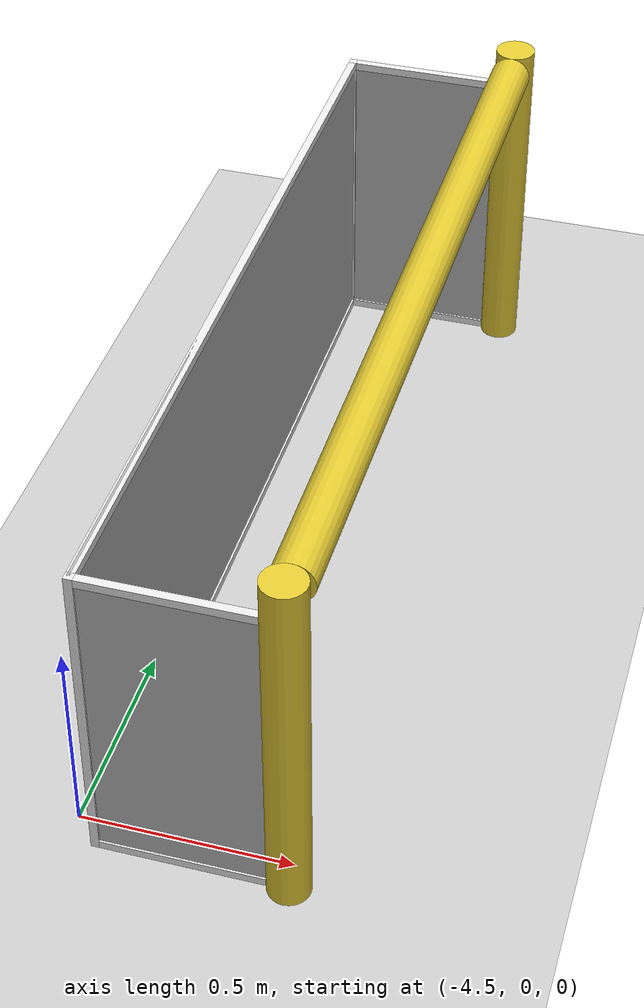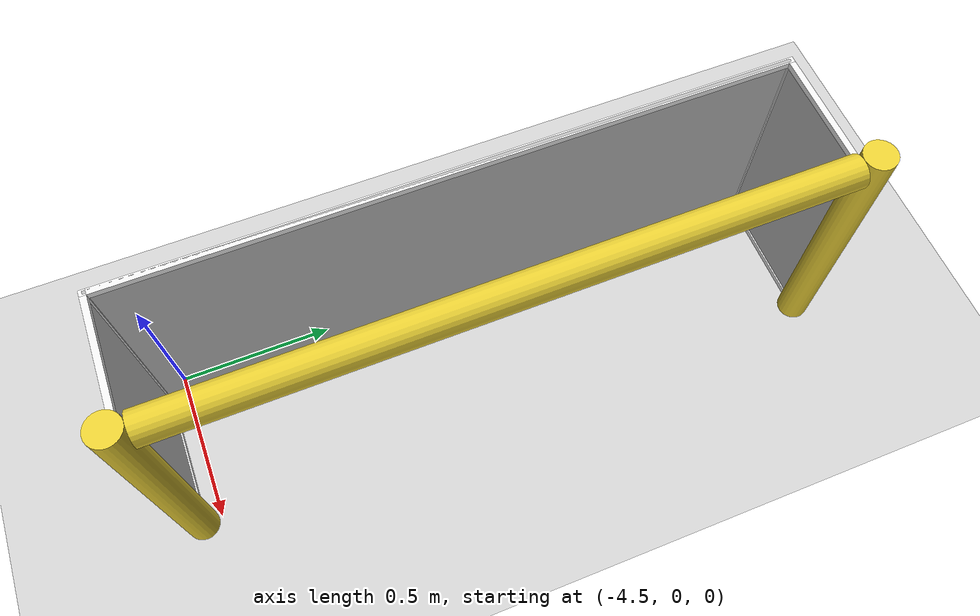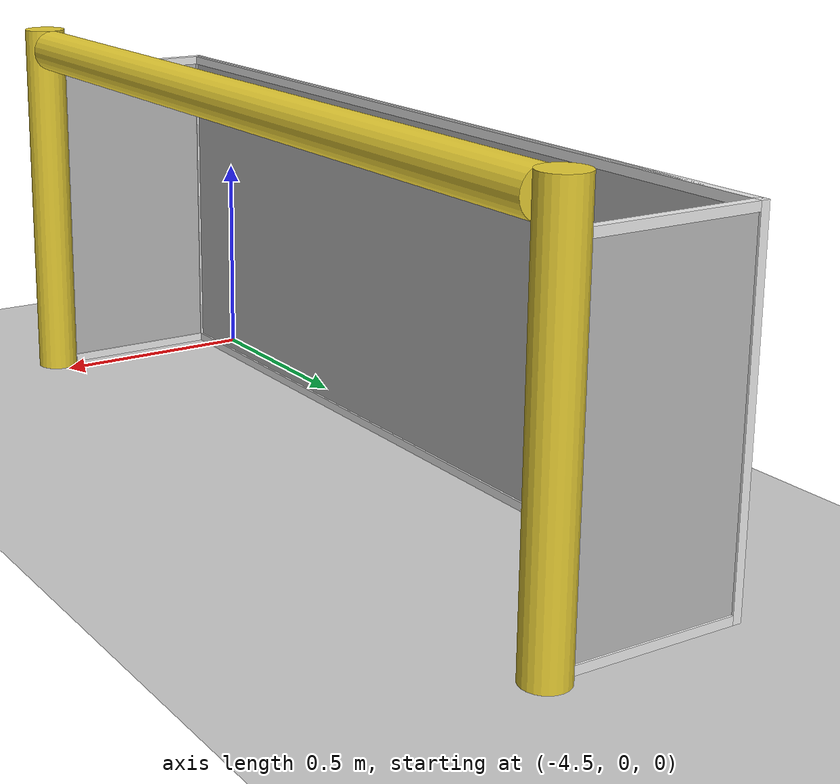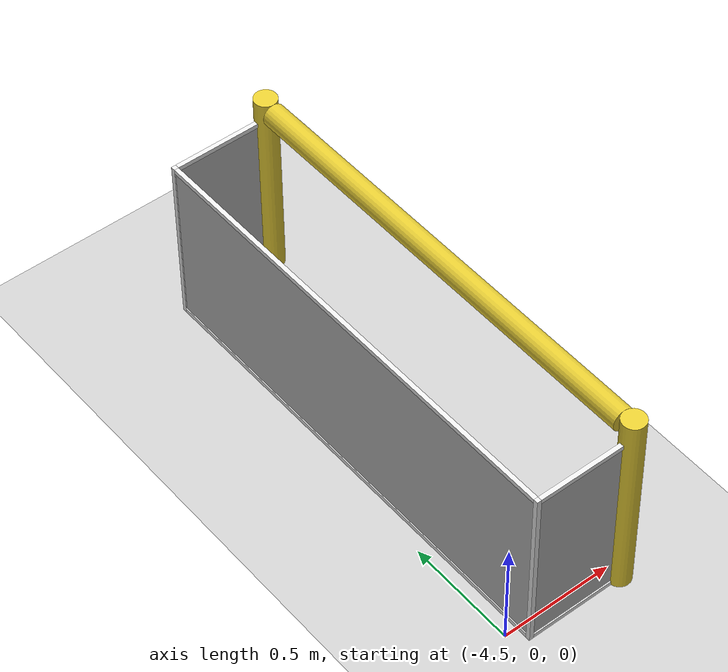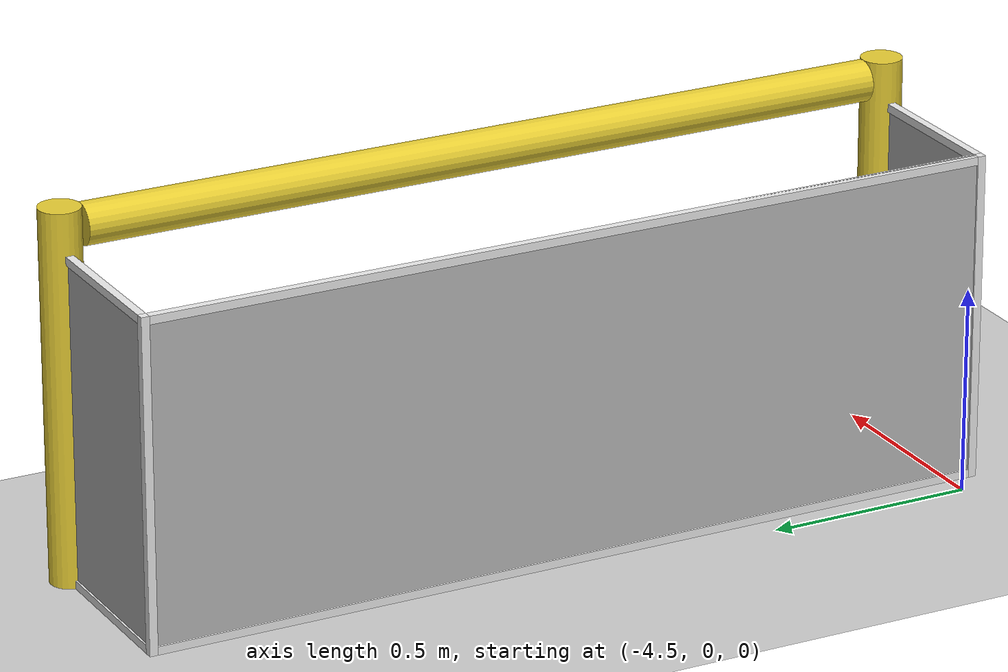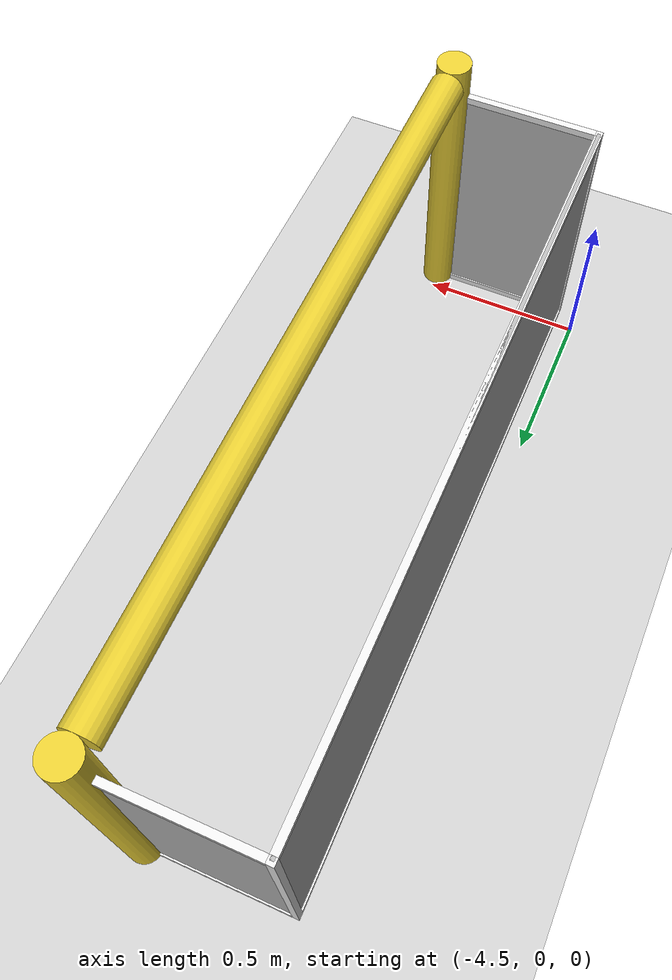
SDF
<sdf version="1.4">
 <world name="default">
  <model name="ground_plane">
   <static>1</static>
   <link name="link">
    <collision name="collision">
     <geometry><plane><normal>0 0 1</normal><size>100 100</size></plane></geometry>
     <surface><friction><ode><mu>100</mu><mu2>50</mu2></ode></friction></surface>
    </collision>
    <visual name="visual">
     <cast_shadows>0</cast_shadows>
     <geometry><plane><normal>0 0 1</normal><size>100 100</size></plane></geometry>
     <material>
      <script><uri>file://media/materials/scripts/gazebo.material</uri><name>Gazebo/Grey</name></script>
     </material>
    </visual>
    <velocity_decay><linear>0</linear><angular>0</angular></velocity_decay>
   </link>
  </model>
  <model name="RoboCup_3D_Simulator_Goal_2">
   <pose>-3.99646 0.99 0 0 0 -3.14</pose>
   <link name="left_post">
    <pose>-0 1.05 0.45 0 -0 0</pose>
    <velocity_decay><linear>0</linear><angular>0</angular></velocity_decay>
    <visual name="visual">
     <geometry><cylinder><radius>0.05</radius><length>0.9</length></cylinder></geometry>
     <material>
      <script><uri>file://media/materials/scripts/gazebo.material</uri><name>Gazebo/ZincYellow</name></script>
      <shader type="pixel"/>
     </material>
    </visual>
    <collision name="collision">
     <geometry><cylinder><radius>0.05</radius><length>0.9</length></cylinder></geometry>
     <surface>
      <friction>
       <ode><mu>1</mu><mu2>1</mu2><fdir1>0 0 0</fdir1><slip1>0</slip1><slip2>0</slip2></ode>
       <torsional>
        <coefficient>1</coefficient>
        <patch_radius>0</patch_radius>
        <surface_radius>0</surface_radius>
        <use_patch_radius>1</use_patch_radius>
        <ode><slip>0</slip></ode>
       </torsional>
      </friction>
      <bounce><restitution_coefficient>0</restitution_coefficient><threshold>1e+06</threshold></bounce>
      <contact>
       <collide_without_contact>0</collide_without_contact>
       <collide_without_contact_bitmask>1</collide_without_contact_bitmask>
       <collide_bitmask>1</collide_bitmask>
       <ode>
        <soft_cfm>0</soft_cfm>
        <soft_erp>0.2</soft_erp>
        <kp>1e+13</kp>
        <kd>1</kd>
        <max_vel>0.01</max_vel>
        <min_depth>0</min_depth>
       </ode>
       <bullet>
        <split_impulse>1</split_impulse>
        <split_impulse_penetration_threshold>-0.01</split_impulse_penetration_threshold>
        <soft_cfm>0</soft_cfm>
        <soft_erp>0.2</soft_erp>
        <kp>1e+13</kp>
        <kd>1</kd>
       </bullet>
      </contact>
     </surface>
    </collision>
   </link>
   <link name="center_net">
    <pose>0.44 0 0.4 0 -0 0</pose>
    <velocity_decay><linear>0</linear><angular>0</angular></velocity_decay>
    <visual name="visual">
     <geometry><box><size>0.01 2.1 0.8</size></box></geometry>
     <material>
      <script>
       <uri>model://robocup09_spl_field/materials/scripts/</uri>
       <uri>model://robocup09_spl_field/materials/textures/</uri>
       <name>RoboCup/Net</name>
      </script>
      <shader type="pixel"/>
     </material>
    </visual>
    <collision name="collision">
     <geometry><box><size>0.01 2.1 0.8</size></box></geometry>
     <surface>
      <friction>
       <ode><mu>1</mu><mu2>1</mu2><fdir1>0 0 0</fdir1><slip1>0</slip1><slip2>0</slip2></ode>
       <torsional>
        <coefficient>1</coefficient>
        <patch_radius>0</patch_radius>
        <surface_radius>0</surface_radius>
        <use_patch_radius>1</use_patch_radius>
        <ode><slip>0</slip></ode>
       </torsional>
      </friction>
      <bounce><restitution_coefficient>0</restitution_coefficient><threshold>1e+06</threshold></bounce>
      <contact>
       <collide_without_contact>0</collide_without_contact>
       <collide_without_contact_bitmask>1</collide_without_contact_bitmask>
       <collide_bitmask>1</collide_bitmask>
       <ode>
        <soft_cfm>0</soft_cfm>
        <soft_erp>0.2</soft_erp>
        <kp>1e+13</kp>
        <kd>1</kd>
        <max_vel>0.01</max_vel>
        <min_depth>0</min_depth>
       </ode>
       <bullet>
        <split_impulse>1</split_impulse>
        <split_impulse_penetration_threshold>-0.01</split_impulse_penetration_threshold>
        <soft_cfm>0</soft_cfm>
        <soft_erp>0.2</soft_erp>
        <kp>1e+13</kp>
        <kd>1</kd>
       </bullet>
      </contact>
     </surface>
    </collision>
   </link>
   <link name="center_support_horiz_lower">
    <pose>0.44 0 0.01 -3.14159 1.57079 -3.14159</pose>
    <velocity_decay><linear>0</linear><angular>0</angular></velocity_decay>
    <visual name="visual">
     <geometry><box><size>0.02 2.08 0.02</size></box></geometry>
     <material>
      <script><uri>file://media/materials/scripts/gazebo.material</uri><name>Gazebo/White</name></script>
      <shader type="pixel"/>
     </material>
    </visual>
    <collision name="collision">
     <geometry><box><size>0.02 2.08 0.02</size></box></geometry>
     <surface>
      <friction>
       <ode><mu>1</mu><mu2>1</mu2><fdir1>0 0 0</fdir1><slip1>0</slip1><slip2>0</slip2></ode>
       <torsional>
        <coefficient>1</coefficient>
        <patch_radius>0</patch_radius>
        <surface_radius>0</surface_radius>
        <use_patch_radius>1</use_patch_radius>
        <ode><slip>0</slip></ode>
       </torsional>
      </friction>
      <bounce><restitution_coefficient>0</restitution_coefficient><threshold>1e+06</threshold></bounce>
      <contact>
       <collide_without_contact>0</collide_without_contact>
       <collide_without_contact_bitmask>1</collide_without_contact_bitmask>
       <collide_bitmask>1</collide_bitmask>
       <ode>
        <soft_cfm>0</soft_cfm>
        <soft_erp>0.2</soft_erp>
        <kp>1e+13</kp>
        <kd>1</kd>
        <max_vel>0.01</max_vel>
        <min_depth>0</min_depth>
       </ode>
       <bullet>
        <split_impulse>1</split_impulse>
        <split_impulse_penetration_threshold>-0.01</split_impulse_penetration_threshold>
        <soft_cfm>0</soft_cfm>
        <soft_erp>0.2</soft_erp>
        <kp>1e+13</kp>
        <kd>1</kd>
       </bullet>
      </contact>
     </surface>
    </collision>
   </link>
   <link name="center_support_horiz_upper">
    <pose>0.44 0 0.79 -3.14159 1.57079 -3.14159</pose>
    <velocity_decay><linear>0</linear><angular>0</angular></velocity_decay>
    <visual name="visual">
     <geometry><box><size>0.02 2.08 0.02</size></box></geometry>
     <material>
      <script><uri>file://media/materials/scripts/gazebo.material</uri><name>Gazebo/White</name></script>
      <shader type="pixel"/>
     </material>
    </visual>
    <collision name="collision">
     <geometry><box><size>0.02 2.08 0.02</size></box></geometry>
     <surface>
      <friction>
       <ode><mu>1</mu><mu2>1</mu2><fdir1>0 0 0</fdir1><slip1>0</slip1><slip2>0</slip2></ode>
       <torsional>
        <coefficient>1</coefficient>
        <patch_radius>0</patch_radius>
        <surface_radius>0</surface_radius>
        <use_patch_radius>1</use_patch_radius>
        <ode><slip>0</slip></ode>
       </torsional>
      </friction>
      <bounce><restitution_coefficient>0</restitution_coefficient><threshold>1e+06</threshold></bounce>
      <contact>
       <collide_without_contact>0</collide_without_contact>
       <collide_without_contact_bitmask>1</collide_without_contact_bitmask>
       <collide_bitmask>1</collide_bitmask>
       <ode>
        <soft_cfm>0</soft_cfm>
        <soft_erp>0.2</soft_erp>
        <kp>1e+13</kp>
        <kd>1</kd>
        <max_vel>0.01</max_vel>
        <min_depth>0</min_depth>
       </ode>
       <bullet>
        <split_impulse>1</split_impulse>
        <split_impulse_penetration_threshold>-0.01</split_impulse_penetration_threshold>
        <soft_cfm>0</soft_cfm>
        <soft_erp>0.2</soft_erp>
        <kp>1e+13</kp>
        <kd>1</kd>
       </bullet>
      </contact>
     </surface>
    </collision>
   </link>
   <link name="crossbar">
    <pose>0 0 0.85 1.57004 1.57 3.6e-05</pose>
    <velocity_decay><linear>0</linear><angular>0</angular></velocity_decay>
    <visual name="visual">
     <geometry><cylinder><radius>0.05</radius><length>2</length></cylinder></geometry>
     <material>
      <script><uri>file://media/materials/scripts/gazebo.material</uri><name>Gazebo/ZincYellow</name></script>
      <shader type="pixel"/>
     </material>
    </visual>
    <collision name="collision">
     <geometry><cylinder><radius>0.05</radius><length>2</length></cylinder></geometry>
     <surface>
      <friction>
       <ode><mu>1</mu><mu2>1</mu2><fdir1>0 0 0</fdir1><slip1>0</slip1><slip2>0</slip2></ode>
       <torsional>
        <coefficient>1</coefficient>
        <patch_radius>0</patch_radius>
        <surface_radius>0</surface_radius>
        <use_patch_radius>1</use_patch_radius>
        <ode><slip>0</slip></ode>
       </torsional>
      </friction>
      <bounce><restitution_coefficient>0</restitution_coefficient><threshold>1e+06</threshold></bounce>
      <contact>
       <collide_without_contact>0</collide_without_contact>
       <collide_without_contact_bitmask>1</collide_without_contact_bitmask>
       <collide_bitmask>1</collide_bitmask>
       <ode>
        <soft_cfm>0</soft_cfm>
        <soft_erp>0.2</soft_erp>
        <kp>1e+13</kp>
        <kd>1</kd>
        <max_vel>0.01</max_vel>
        <min_depth>0</min_depth>
       </ode>
       <bullet>
        <split_impulse>1</split_impulse>
        <split_impulse_penetration_threshold>-0.01</split_impulse_penetration_threshold>
        <soft_cfm>0</soft_cfm>
        <soft_erp>0.2</soft_erp>
        <kp>1e+13</kp>
        <kd>1</kd>
       </bullet>
      </contact>
     </surface>
    </collision>
   </link>
   <link name="left_net">
    <pose>0.24 1.05 0.4 0 -0 0</pose>
    <velocity_decay><linear>0</linear><angular>0</angular></velocity_decay>
    <visual name="visual">
     <geometry><box><size>0.38 0.01 0.76</size></box></geometry>
     <material>
      <script>
       <uri>model://robocup09_spl_field/materials/scripts/</uri>
       <uri>model://robocup09_spl_field/materials/textures/</uri>
       <name>RoboCup/Net</name>
      </script>
      <shader type="pixel"/>
     </material>
    </visual>
    <collision name="collision">
     <geometry><box><size>0.38 0.01 0.76</size></box></geometry>
     <surface>
      <friction>
       <ode><mu>1</mu><mu2>1</mu2><fdir1>0 0 0</fdir1><slip1>0</slip1><slip2>0</slip2></ode>
       <torsional>
        <coefficient>1</coefficient>
        <patch_radius>0</patch_radius>
        <surface_radius>0</surface_radius>
        <use_patch_radius>1</use_patch_radius>
        <ode><slip>0</slip></ode>
       </torsional>
      </friction>
      <bounce><restitution_coefficient>0</restitution_coefficient><threshold>1e+06</threshold></bounce>
      <contact>
       <collide_without_contact>0</collide_without_contact>
       <collide_without_contact_bitmask>1</collide_without_contact_bitmask>
       <collide_bitmask>1</collide_bitmask>
       <ode>
        <soft_cfm>0</soft_cfm>
        <soft_erp>0.2</soft_erp>
        <kp>1e+13</kp>
        <kd>1</kd>
        <max_vel>0.01</max_vel>
        <min_depth>0</min_depth>
       </ode>
       <bullet>
        <split_impulse>1</split_impulse>
        <split_impulse_penetration_threshold>-0.01</split_impulse_penetration_threshold>
        <soft_cfm>0</soft_cfm>
        <soft_erp>0.2</soft_erp>
        <kp>1e+13</kp>
        <kd>1</kd>
       </bullet>
      </contact>
     </surface>
    </collision>
   </link>
   <link name="left_support_horiz_lower">
    <pose>0.24 1.05 0.01 0 -0 0</pose>
    <velocity_decay><linear>0</linear><angular>0</angular></velocity_decay>
    <visual name="visual">
     <geometry><box><size>0.38 0.02 0.02</size></box></geometry>
     <material>
      <script><uri>file://media/materials/scripts/gazebo.material</uri><name>Gazebo/White</name></script>
      <shader type="pixel"/>
     </material>
    </visual>
    <collision name="collision">
     <geometry><box><size>0.38 0.02 0.02</size></box></geometry>
     <surface>
      <friction>
       <ode><mu>1</mu><mu2>1</mu2><fdir1>0 0 0</fdir1><slip1>0</slip1><slip2>0</slip2></ode>
       <torsional>
        <coefficient>1</coefficient>
        <patch_radius>0</patch_radius>
        <surface_radius>0</surface_radius>
        <use_patch_radius>1</use_patch_radius>
        <ode><slip>0</slip></ode>
       </torsional>
      </friction>
      <bounce><restitution_coefficient>0</restitution_coefficient><threshold>1e+06</threshold></bounce>
      <contact>
       <collide_without_contact>0</collide_without_contact>
       <collide_without_contact_bitmask>1</collide_without_contact_bitmask>
       <collide_bitmask>1</collide_bitmask>
       <ode>
        <soft_cfm>0</soft_cfm>
        <soft_erp>0.2</soft_erp>
        <kp>1e+13</kp>
        <kd>1</kd>
        <max_vel>0.01</max_vel>
        <min_depth>0</min_depth>
       </ode>
       <bullet>
        <split_impulse>1</split_impulse>
        <split_impulse_penetration_threshold>-0.01</split_impulse_penetration_threshold>
        <soft_cfm>0</soft_cfm>
        <soft_erp>0.2</soft_erp>
        <kp>1e+13</kp>
        <kd>1</kd>
       </bullet>
      </contact>
     </surface>
    </collision>
   </link>
   <link name="left_support_horiz_upper">
    <pose>0.24 1.05 0.79 0 -0 0</pose>
    <velocity_decay><linear>0</linear><angular>0</angular></velocity_decay>
    <visual name="visual">
     <geometry><box><size>0.38 0.02 0.02</size></box></geometry>
     <material>
      <script><uri>file://media/materials/scripts/gazebo.material</uri><name>Gazebo/White</name></script>
      <shader type="pixel"/>
     </material>
    </visual>
    <collision name="collision">
     <geometry><box><size>0.38 0.02 0.02</size></box></geometry>
     <surface>
      <friction>
       <ode><mu>1</mu><mu2>1</mu2><fdir1>0 0 0</fdir1><slip1>0</slip1><slip2>0</slip2></ode>
       <torsional>
        <coefficient>1</coefficient>
        <patch_radius>0</patch_radius>
        <surface_radius>0</surface_radius>
        <use_patch_radius>1</use_patch_radius>
        <ode><slip>0</slip></ode>
       </torsional>
      </friction>
      <bounce><restitution_coefficient>0</restitution_coefficient><threshold>1e+06</threshold></bounce>
      <contact>
       <collide_without_contact>0</collide_without_contact>
       <collide_without_contact_bitmask>1</collide_without_contact_bitmask>
       <collide_bitmask>1</collide_bitmask>
       <ode>
        <soft_cfm>0</soft_cfm>
        <soft_erp>0.2</soft_erp>
        <kp>1e+13</kp>
        <kd>1</kd>
        <max_vel>0.01</max_vel>
        <min_depth>0</min_depth>
       </ode>
       <bullet>
        <split_impulse>1</split_impulse>
        <split_impulse_penetration_threshold>-0.01</split_impulse_penetration_threshold>
        <soft_cfm>0</soft_cfm>
        <soft_erp>0.2</soft_erp>
        <kp>1e+13</kp>
        <kd>1</kd>
       </bullet>
      </contact>
     </surface>
    </collision>
   </link>
   <link name="left_support_vertical">
    <pose>0.44 1.05 0.4 -3.14159 1.57079 -3.14159</pose>
    <velocity_decay><linear>0</linear><angular>0</angular></velocity_decay>
    <visual name="visual">
     <geometry><box><size>0.8 0.02 0.02</size></box></geometry>
     <material>
      <script><uri>file://media/materials/scripts/gazebo.material</uri><name>Gazebo/White</name></script>
      <shader type="pixel"/>
     </material>
    </visual>
    <collision name="collision">
     <geometry><box><size>0.8 0.02 0.02</size></box></geometry>
     <surface>
      <friction>
       <ode><mu>1</mu><mu2>1</mu2><fdir1>0 0 0</fdir1><slip1>0</slip1><slip2>0</slip2></ode>
       <torsional>
        <coefficient>1</coefficient>
        <patch_radius>0</patch_radius>
        <surface_radius>0</surface_radius>
        <use_patch_radius>1</use_patch_radius>
        <ode><slip>0</slip></ode>
       </torsional>
      </friction>
      <bounce><restitution_coefficient>0</restitution_coefficient><threshold>1e+06</threshold></bounce>
      <contact>
       <collide_without_contact>0</collide_without_contact>
       <collide_without_contact_bitmask>1</collide_without_contact_bitmask>
       <collide_bitmask>1</collide_bitmask>
       <ode>
        <soft_cfm>0</soft_cfm>
        <soft_erp>0.2</soft_erp>
        <kp>1e+13</kp>
        <kd>1</kd>
        <max_vel>0.01</max_vel>
        <min_depth>0</min_depth>
       </ode>
       <bullet>
        <split_impulse>1</split_impulse>
        <split_impulse_penetration_threshold>-0.01</split_impulse_penetration_threshold>
        <soft_cfm>0</soft_cfm>
        <soft_erp>0.2</soft_erp>
        <kp>1e+13</kp>
        <kd>1</kd>
       </bullet>
      </contact>
     </surface>
    </collision>
   </link>
   <link name="right_net">
    <pose>0.24 -1.05 0.4 0 -0 0</pose>
    <velocity_decay><linear>0</linear><angular>0</angular></velocity_decay>
    <visual name="visual">
     <geometry><box><size>0.38 0.01 0.76</size></box></geometry>
     <material>
      <script>
       <uri>model://robocup09_spl_field/materials/scripts/</uri>
       <uri>model://robocup09_spl_field/materials/textures/</uri>
       <name>RoboCup/Net</name>
      </script>
      <shader type="pixel"/>
     </material>
    </visual>
    <collision name="collision">
     <geometry><box><size>0.38 0.01 0.76</size></box></geometry>
     <surface>
      <friction>
       <ode><mu>1</mu><mu2>1</mu2><fdir1>0 0 0</fdir1><slip1>0</slip1><slip2>0</slip2></ode>
       <torsional>
        <coefficient>1</coefficient>
        <patch_radius>0</patch_radius>
        <surface_radius>0</surface_radius>
        <use_patch_radius>1</use_patch_radius>
        <ode><slip>0</slip></ode>
       </torsional>
      </friction>
      <bounce><restitution_coefficient>0</restitution_coefficient><threshold>1e+06</threshold></bounce>
      <contact>
       <collide_without_contact>0</collide_without_contact>
       <collide_without_contact_bitmask>1</collide_without_contact_bitmask>
       <collide_bitmask>1</collide_bitmask>
       <ode>
        <soft_cfm>0</soft_cfm>
        <soft_erp>0.2</soft_erp>
        <kp>1e+13</kp>
        <kd>1</kd>
        <max_vel>0.01</max_vel>
        <min_depth>0</min_depth>
       </ode>
       <bullet>
        <split_impulse>1</split_impulse>
        <split_impulse_penetration_threshold>-0.01</split_impulse_penetration_threshold>
        <soft_cfm>0</soft_cfm>
        <soft_erp>0.2</soft_erp>
        <kp>1e+13</kp>
        <kd>1</kd>
       </bullet>
      </contact>
     </surface>
    </collision>
   </link>
   <link name="right_post">
    <pose>0 -1.05 0.45 0 -0 0</pose>
    <velocity_decay><linear>0</linear><angular>0</angular></velocity_decay>
    <visual name="visual">
     <geometry><cylinder><radius>0.05</radius><length>0.9</length></cylinder></geometry>
     <material>
      <script><uri>file://media/materials/scripts/gazebo.material</uri><name>Gazebo/ZincYellow</name></script>
      <shader type="pixel"/>
     </material>
    </visual>
    <collision name="collision">
     <geometry><cylinder><radius>0.05</radius><length>0.9</length></cylinder></geometry>
     <surface>
      <friction>
       <ode><mu>1</mu><mu2>1</mu2><fdir1>0 0 0</fdir1><slip1>0</slip1><slip2>0</slip2></ode>
       <torsional>
        <coefficient>1</coefficient>
        <patch_radius>0</patch_radius>
        <surface_radius>0</surface_radius>
        <use_patch_radius>1</use_patch_radius>
        <ode><slip>0</slip></ode>
       </torsional>
      </friction>
      <bounce><restitution_coefficient>0</restitution_coefficient><threshold>1e+06</threshold></bounce>
      <contact>
       <collide_without_contact>0</collide_without_contact>
       <collide_without_contact_bitmask>1</collide_without_contact_bitmask>
       <collide_bitmask>1</collide_bitmask>
       <ode>
        <soft_cfm>0</soft_cfm>
        <soft_erp>0.2</soft_erp>
        <kp>1e+13</kp>
        <kd>1</kd>
        <max_vel>0.01</max_vel>
        <min_depth>0</min_depth>
       </ode>
       <bullet>
        <split_impulse>1</split_impulse>
        <split_impulse_penetration_threshold>-0.01</split_impulse_penetration_threshold>
        <soft_cfm>0</soft_cfm>
        <soft_erp>0.2</soft_erp>
        <kp>1e+13</kp>
        <kd>1</kd>
       </bullet>
      </contact>
     </surface>
    </collision>
   </link>
   <link name="right_support_horiz_lower">
    <pose>0.24 -1.05 0.01 0 -0 0</pose>
    <velocity_decay><linear>0</linear><angular>0</angular></velocity_decay>
    <visual name="visual">
     <geometry><box><size>0.38 0.02 0.02</size></box></geometry>
     <material>
      <script><uri>file://media/materials/scripts/gazebo.material</uri><name>Gazebo/White</name></script>
      <shader type="pixel"/>
     </material>
    </visual>
    <collision name="collision">
     <geometry><box><size>0.38 0.02 0.02</size></box></geometry>
     <surface>
      <friction>
       <ode><mu>1</mu><mu2>1</mu2><fdir1>0 0 0</fdir1><slip1>0</slip1><slip2>0</slip2></ode>
       <torsional>
        <coefficient>1</coefficient>
        <patch_radius>0</patch_radius>
        <surface_radius>0</surface_radius>
        <use_patch_radius>1</use_patch_radius>
        <ode><slip>0</slip></ode>
       </torsional>
      </friction>
      <bounce><restitution_coefficient>0</restitution_coefficient><threshold>1e+06</threshold></bounce>
      <contact>
       <collide_without_contact>0</collide_without_contact>
       <collide_without_contact_bitmask>1</collide_without_contact_bitmask>
       <collide_bitmask>1</collide_bitmask>
       <ode>
        <soft_cfm>0</soft_cfm>
        <soft_erp>0.2</soft_erp>
        <kp>1e+13</kp>
        <kd>1</kd>
        <max_vel>0.01</max_vel>
        <min_depth>0</min_depth>
       </ode>
       <bullet>
        <split_impulse>1</split_impulse>
        <split_impulse_penetration_threshold>-0.01</split_impulse_penetration_threshold>
        <soft_cfm>0</soft_cfm>
        <soft_erp>0.2</soft_erp>
        <kp>1e+13</kp>
        <kd>1</kd>
       </bullet>
      </contact>
     </surface>
    </collision>
   </link>
   <link name="right_support_horiz_upper">
    <pose>0.24 -1.05 0.79 0 -0 0</pose>
    <velocity_decay><linear>0</linear><angular>0</angular></velocity_decay>
    <visual name="visual">
     <geometry><box><size>0.38 0.02 0.02</size></box></geometry>
     <material>
      <script><uri>file://media/materials/scripts/gazebo.material</uri><name>Gazebo/White</name></script>
      <shader type="pixel"/>
     </material>
    </visual>
    <collision name="collision">
     <geometry><box><size>0.38 0.02 0.02</size></box></geometry>
     <surface>
      <friction>
       <ode><mu>1</mu><mu2>1</mu2><fdir1>0 0 0</fdir1><slip1>0</slip1><slip2>0</slip2></ode>
       <torsional>
        <coefficient>1</coefficient>
        <patch_radius>0</patch_radius>
        <surface_radius>0</surface_radius>
        <use_patch_radius>1</use_patch_radius>
        <ode><slip>0</slip></ode>
       </torsional>
      </friction>
      <bounce><restitution_coefficient>0</restitution_coefficient><threshold>1e+06</threshold></bounce>
      <contact>
       <collide_without_contact>0</collide_without_contact>
       <collide_without_contact_bitmask>1</collide_without_contact_bitmask>
       <collide_bitmask>1</collide_bitmask>
       <ode>
        <soft_cfm>0</soft_cfm>
        <soft_erp>0.2</soft_erp>
        <kp>1e+13</kp>
        <kd>1</kd>
        <max_vel>0.01</max_vel>
        <min_depth>0</min_depth>
       </ode>
       <bullet>
        <split_impulse>1</split_impulse>
        <split_impulse_penetration_threshold>-0.01</split_impulse_penetration_threshold>
        <soft_cfm>0</soft_cfm>
        <soft_erp>0.2</soft_erp>
        <kp>1e+13</kp>
        <kd>1</kd>
       </bullet>
      </contact>
     </surface>
    </collision>
   </link>
   <link name="right_support_vertical">
    <pose>0.44 -1.05 0.4 -3.14159 1.57079 -3.14159</pose>
    <velocity_decay><linear>0</linear><angular>0</angular></velocity_decay>
    <visual name="visual">
     <geometry><box><size>0.8 0.02 0.02</size></box></geometry>
     <material>
      <script><uri>file://media/materials/scripts/gazebo.material</uri><name>Gazebo/White</name></script>
      <shader type="pixel"/>
     </material>
    </visual>
    <collision name="collision">
     <geometry><box><size>0.8 0.02 0.02</size></box></geometry>
     <surface>
      <friction>
       <ode><mu>1</mu><mu2>1</mu2><fdir1>0 0 0</fdir1><slip1>0</slip1><slip2>0</slip2></ode>
       <torsional>
        <coefficient>1</coefficient>
        <patch_radius>0</patch_radius>
        <surface_radius>0</surface_radius>
        <use_patch_radius>1</use_patch_radius>
        <ode><slip>0</slip></ode>
       </torsional>
      </friction>
      <bounce><restitution_coefficient>0</restitution_coefficient><threshold>1e+06</threshold></bounce>
      <contact>
       <collide_without_contact>0</collide_without_contact>
       <collide_without_contact_bitmask>1</collide_without_contact_bitmask>
       <collide_bitmask>1</collide_bitmask>
       <ode>
        <soft_cfm>0</soft_cfm>
        <soft_erp>0.2</soft_erp>
        <kp>1e+13</kp>
        <kd>1</kd>
        <max_vel>0.01</max_vel>
        <min_depth>0</min_depth>
       </ode>
       <bullet>
        <split_impulse>1</split_impulse>
        <split_impulse_penetration_threshold>-0.01</split_impulse_penetration_threshold>
        <soft_cfm>0</soft_cfm>
        <soft_erp>0.2</soft_erp>
        <kp>1e+13</kp>
        <kd>1</kd>
       </bullet>
      </contact>
     </surface>
    </collision>
   </link>
   <static>1</static>
  </model>
  <model name="transparent_wall_1">
   <pose>-0.7 -2.1 0 0 0 0</pose>
   <link name="link">
    <pose>0.726588 0 0.294861 0 -0 0</pose>
    <inertial>
     <inertia><ixx>0</ixx><ixy>0</ixy><ixz>0</ixz><iyy>0</iyy><iyz>0</iyz><izz>0</izz></inertia>
     <mass>0</mass>
    </inertial>
    <visual name="visual">
     <cast_shadows>0</cast_shadows>
     <geometry><box><size>9.33092 0.2 1.33014</size></box></geometry>
     <material>
      <script>
       <uri>model://grey_wall/materials/scripts</uri>
       <uri>model://grey_wall/materials/textures</uri>
       <name>vrc/grey_wall</name>
      </script>
      <shader type="pixel"><normal_map>__default__</normal_map></shader>
      <ambient>1 1 1 1</ambient>
      <diffuse>1 1 1 1</diffuse>
      <specular>0 0 0 1</specular>
      <emissive>0 0 0 1</emissive>
     </material>
     <transparency>1</transparency>
    </visual>
    <collision name="collision">
     <geometry><box><size>9.33092 0.2 1.33014</size></box></geometry>
     <surface>
      <friction>
       <ode><mu>1</mu><mu2>1</mu2><fdir1>0 0 0</fdir1><slip1>0</slip1><slip2>0</slip2></ode>
       <torsional>
        <coefficient>1</coefficient>
        <patch_radius>0</patch_radius>
        <surface_radius>0</surface_radius>
        <use_patch_radius>1</use_patch_radius>
        <ode><slip>0</slip></ode>
       </torsional>
      </friction>
      <bounce><restitution_coefficient>0</restitution_coefficient><threshold>1e+06</threshold></bounce>
      <contact>
       <collide_without_contact>0</collide_without_contact>
       <collide_without_contact_bitmask>1</collide_without_contact_bitmask>
       <collide_bitmask>1</collide_bitmask>
       <ode>
        <soft_cfm>0</soft_cfm>
        <soft_erp>0.2</soft_erp>
        <kp>1e+13</kp>
        <kd>1</kd>
        <max_vel>0.01</max_vel>
        <min_depth>0</min_depth>
       </ode>
       <bullet>
        <split_impulse>1</split_impulse>
        <split_impulse_penetration_threshold>-0.01</split_impulse_penetration_threshold>
        <soft_cfm>0</soft_cfm>
        <soft_erp>0.2</soft_erp>
        <kp>1e+13</kp>
        <kd>1</kd>
       </bullet>
      </contact>
     </surface>
    </collision>
   </link>
   <static>1</static>
  </model>
  <model name="transparent_wall_4">
   <pose>-4.349987 1.657794 0 0 0 -1.571</pose>
   <link name="link">
    <pose>0.668434 -0.252291 0.294861 0 -0 0</pose>
    <inertial>
     <inertia><ixx>0</ixx><ixy>0</ixy><ixz>0</ixz><iyy>0</iyy><iyz>0</iyz><izz>0</izz></inertia>
     <mass>0</mass>
    </inertial>
    <visual name="visual">
     <cast_shadows>0</cast_shadows>
     <geometry><box><size>6.46288 0.2 1.33014</size></box></geometry>
     <material>
      <script>
       <uri>model://grey_wall/materials/scripts</uri>
       <uri>model://grey_wall/materials/textures</uri>
       <name>vrc/grey_wall</name>
      </script>
      <shader type="pixel"><normal_map>__default__</normal_map></shader>
      <ambient>1 1 1 1</ambient>
      <diffuse>1 1 1 1</diffuse>
      <specular>0 0 0 1</specular>
      <emissive>0 0 0 1</emissive>
     </material>
     <transparency>1</transparency>
    </visual>
    <collision name="collision">
     <geometry><box><size>6.46288 0.2 1.33014</size></box></geometry>
     <surface>
      <friction>
       <ode><mu>1</mu><mu2>1</mu2><fdir1>0 0 0</fdir1><slip1>0</slip1><slip2>0</slip2></ode>
       <torsional>
        <coefficient>1</coefficient>
        <patch_radius>0</patch_radius>
        <surface_radius>0</surface_radius>
        <use_patch_radius>1</use_patch_radius>
        <ode><slip>0</slip></ode>
       </torsional>
      </friction>
      <bounce><restitution_coefficient>0</restitution_coefficient><threshold>1e+06</threshold></bounce>
      <contact>
       <collide_without_contact>0</collide_without_contact>
       <collide_without_contact_bitmask>1</collide_without_contact_bitmask>
       <collide_bitmask>1</collide_bitmask>
       <ode>
        <soft_cfm>0</soft_cfm>
        <soft_erp>0.2</soft_erp>
        <kp>1e+13</kp>
        <kd>1</kd>
        <max_vel>0.01</max_vel>
        <min_depth>0</min_depth>
       </ode>
       <bullet>
        <split_impulse>1</split_impulse>
        <split_impulse_penetration_threshold>-0.01</split_impulse_penetration_threshold>
        <soft_cfm>0</soft_cfm>
        <soft_erp>0.2</soft_erp>
        <kp>1e+13</kp>
        <kd>1</kd>
       </bullet>
      </contact>
     </surface>
    </collision>
   </link>
   <static>1</static>
  </model>
 </world>
</sdf>
